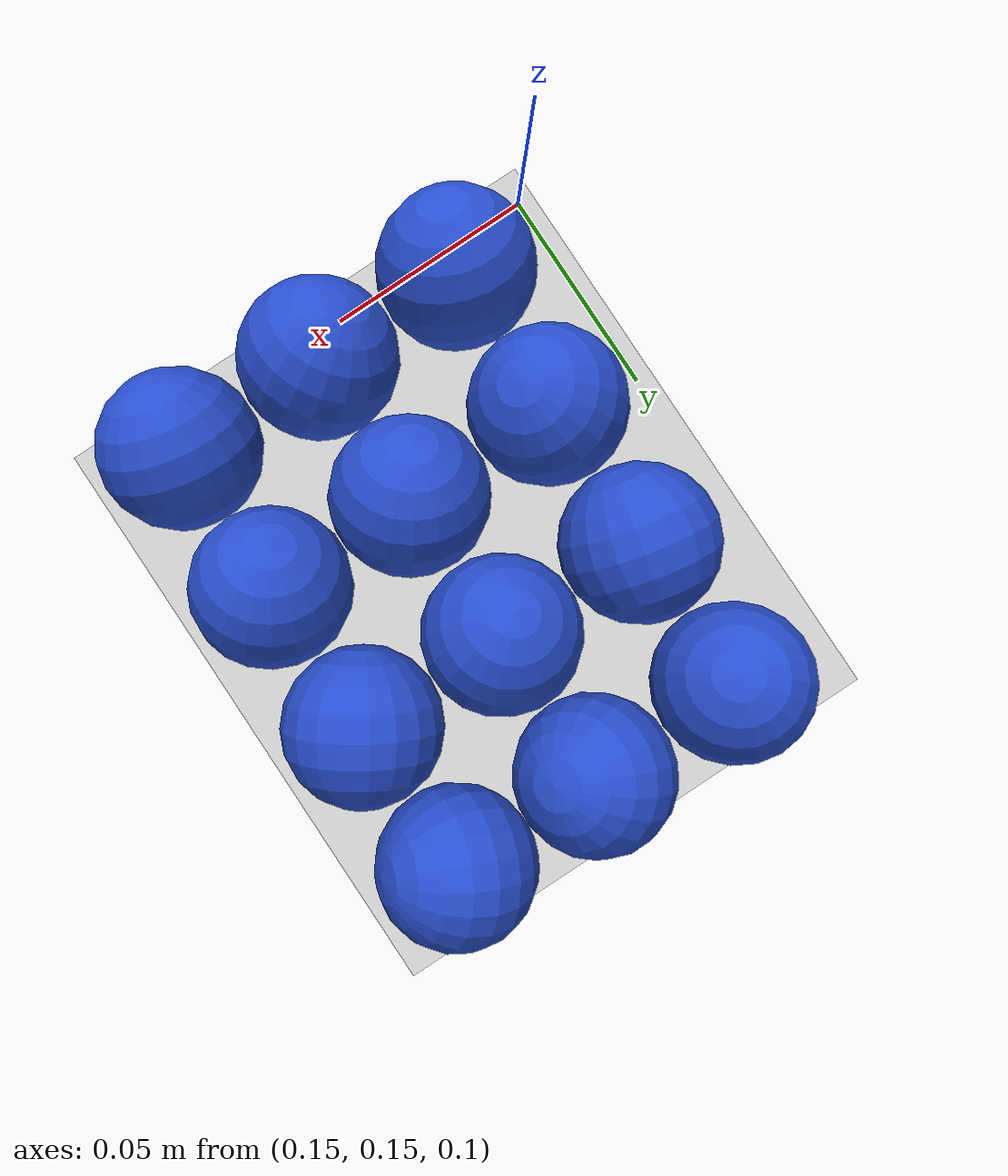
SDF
<sdf version="1.7">
 <world name="default">
  <light name="sun" type="directional">
   <pose>0 0 10 0 -0 0</pose>
   <diffuse>0.8 0.8 0.8 1</diffuse>
   <specular>0.2 0.2 0.2 1</specular>
   <attenuation>
    <range>1000</range>
    <constant>0.9</constant>
    <linear>0.01</linear>
    <quadratic>0.001</quadratic>
   </attenuation>
   <direction>-0.5 0.1 -0.9</direction>
   <spot><inner_angle>0</inner_angle><outer_angle>0</outer_angle><falloff>0</falloff></spot>
  </light>
  <model name="ground_plane">
   <static>1</static>
   <link name="link">
    <collision name="collision">
     <geometry><plane><normal>0 0 1</normal><size>100 100</size></plane></geometry>
     <surface>
      <contact><collide_bitmask>65535</collide_bitmask></contact>
      <friction><ode><mu>100</mu><mu2>50</mu2></ode></friction>
     </surface>
    </collision>
    <visual name="visual">
     <cast_shadows>0</cast_shadows>
     <geometry><plane><normal>0 0 1</normal><size>100 100</size></plane></geometry>
     <material>
      <script><uri>file://media/materials/scripts/gazebo.material</uri><name>Gazebo/Grey</name></script>
     </material>
    </visual>
   </link>
  </model>
  <gravity>0 0 -9.8</gravity>
  <magnetic_field>6e-06 2.3e-05 -4.2e-05</magnetic_field>
  <atmosphere type="adiabatic"/>
  <physics type="ode">
   <max_step_size>0.001</max_step_size>
   <real_time_factor>1</real_time_factor>
   <real_time_update_rate>1000</real_time_update_rate>
  </physics>
  <scene><ambient>0.4 0.4 0.4 1</ambient><background>0.7 0.7 0.7 1</background><shadows>1</shadows></scene>
  <spherical_coordinates>
   <surface_model>EARTH_WGS84</surface_model>
   <latitude_deg>0</latitude_deg>
   <longitude_deg>0</longitude_deg>
   <elevation>0</elevation>
   <heading_deg>0</heading_deg>
  </spherical_coordinates>
  <model name="marble_1_5cm">
   <link name="link">
    <pose>0 0 0.0075 0 -0 0</pose>
    <inertial>
     <mass>0.0062</mass>
     <inertia>
      <ixx>1.395e-07</ixx>
      <ixy>0</ixy>
      <ixz>0</ixz>
      <iyy>1.395e-07</iyy>
      <iyz>0</iyz>
      <izz>1.395e-07</izz>
     </inertia>
    </inertial>
    <collision name="collision">
     <geometry><sphere><radius>0.0175</radius></sphere></geometry>
     <surface>
      <contact>
       <poissons_ratio>0.22</poissons_ratio>
       <elastic_modulus>5.1e+10</elastic_modulus>
       <ode><kp>100000</kp><kd>100</kd><max_vel>100</max_vel><min_depth>0.001</min_depth></ode>
      </contact>
      <friction>
       <torsional>
        <coefficient>1</coefficient>
        <use_patch_radius>0</use_patch_radius>
        <surface_radius>0.01</surface_radius>
       </torsional>
      </friction>
     </surface>
    </collision>
    <visual name="visual">
     <geometry><sphere><radius>0.0175</radius></sphere></geometry>
     <material>
      <script><uri>file://media/materials/scripts/gazebo.material</uri><name>Gazebo/Blue</name></script>
     </material>
    </visual>
    <velocity_decay><linear>0</linear><angular>0.005</angular></velocity_decay>
   </link>
   <pose>0.211955 0.198445 0.113666 0.266479 -0.501159 0.343857</pose>
  </model>
  <model name="marble_1_5cm_clone">
   <link name="link">
    <pose>0 0 0.0075 0 -0 0</pose>
    <inertial>
     <mass>0.0062</mass>
     <inertia>
      <ixx>1.395e-07</ixx>
      <ixy>0</ixy>
      <ixz>0</ixz>
      <iyy>1.395e-07</iyy>
      <iyz>0</iyz>
      <izz>1.395e-07</izz>
     </inertia>
    </inertial>
    <collision name="collision">
     <geometry><sphere><radius>0.0175</radius></sphere></geometry>
     <surface>
      <contact>
       <poissons_ratio>0.22</poissons_ratio>
       <elastic_modulus>5.1e+10</elastic_modulus>
       <ode><kp>100000</kp><kd>100</kd><max_vel>100</max_vel><min_depth>0.001</min_depth></ode>
      </contact>
      <friction>
       <torsional>
        <coefficient>1</coefficient>
        <use_patch_radius>0</use_patch_radius>
        <surface_radius>0.01</surface_radius>
       </torsional>
      </friction>
     </surface>
    </collision>
    <visual name="visual">
     <geometry><sphere><radius>0.0175</radius></sphere></geometry>
     <material>
      <script><uri>file://media/materials/scripts/gazebo.material</uri><name>Gazebo/Blue</name></script>
     </material>
    </visual>
    <velocity_decay><linear>0</linear><angular>0.005</angular></velocity_decay>
   </link>
   <pose>0.175577 0.237973 0.118728 1.42434 -0.441231 -0.13584</pose>
  </model>
  <model name="marble_1_5cm_clone_0">
   <link name="link">
    <pose>0 0 0.0075 0 -0 0</pose>
    <inertial>
     <mass>0.0062</mass>
     <inertia>
      <ixx>1.395e-07</ixx>
      <ixy>0</ixy>
      <ixz>0</ixz>
      <iyy>1.395e-07</iyy>
      <iyz>0</iyz>
      <izz>1.395e-07</izz>
     </inertia>
    </inertial>
    <collision name="collision">
     <geometry><sphere><radius>0.0175</radius></sphere></geometry>
     <surface>
      <contact>
       <poissons_ratio>0.22</poissons_ratio>
       <elastic_modulus>5.1e+10</elastic_modulus>
       <ode><kp>100000</kp><kd>100</kd><max_vel>100</max_vel><min_depth>0.001</min_depth></ode>
      </contact>
      <friction>
       <torsional>
        <coefficient>1</coefficient>
        <use_patch_radius>0</use_patch_radius>
        <surface_radius>0.01</surface_radius>
       </torsional>
      </friction>
     </surface>
    </collision>
    <visual name="visual">
     <geometry><sphere><radius>0.0175</radius></sphere></geometry>
     <material>
      <script><uri>file://media/materials/scripts/gazebo.material</uri><name>Gazebo/Blue</name></script>
     </material>
    </visual>
    <velocity_decay><linear>0</linear><angular>0.005</angular></velocity_decay>
   </link>
   <pose>0.248651 0.236966 0.11931 1.49375 -0.483258 -0.551149</pose>
  </model>
  <model name="marble_1_5cm_clone_1">
   <link name="link">
    <pose>0 0 0.0075 0 -0 0</pose>
    <inertial>
     <mass>0.0062</mass>
     <inertia>
      <ixx>1.395e-07</ixx>
      <ixy>0</ixy>
      <ixz>0</ixz>
      <iyy>1.395e-07</iyy>
      <iyz>0</iyz>
      <izz>1.395e-07</izz>
     </inertia>
    </inertial>
    <collision name="collision">
     <geometry><sphere><radius>0.0175</radius></sphere></geometry>
     <surface>
      <contact>
       <poissons_ratio>0.22</poissons_ratio>
       <elastic_modulus>5.1e+10</elastic_modulus>
       <ode><kp>100000</kp><kd>100</kd><max_vel>100</max_vel><min_depth>0.001</min_depth></ode>
      </contact>
      <friction>
       <torsional>
        <coefficient>1</coefficient>
        <use_patch_radius>0</use_patch_radius>
        <surface_radius>0.01</surface_radius>
       </torsional>
      </friction>
     </surface>
    </collision>
    <visual name="visual">
     <geometry><sphere><radius>0.0175</radius></sphere></geometry>
     <material>
      <script><uri>file://media/materials/scripts/gazebo.material</uri><name>Gazebo/Blue</name></script>
     </material>
    </visual>
    <velocity_decay><linear>0</linear><angular>0.005</angular></velocity_decay>
   </link>
   <pose>0.173435 0.268212 0.111984 0.16023 0.209989 -0.630529</pose>
  </model>
  <model name="marble_1_5cm_clone_2">
   <link name="link">
    <pose>0 0 0.0075 0 -0 0</pose>
    <inertial>
     <mass>0.0062</mass>
     <inertia>
      <ixx>1.395e-07</ixx>
      <ixy>0</ixy>
      <ixz>0</ixz>
      <iyy>1.395e-07</iyy>
      <iyz>0</iyz>
      <izz>1.395e-07</izz>
     </inertia>
    </inertial>
    <collision name="collision">
     <geometry><sphere><radius>0.0175</radius></sphere></geometry>
     <surface>
      <contact>
       <poissons_ratio>0.22</poissons_ratio>
       <elastic_modulus>5.1e+10</elastic_modulus>
       <ode><kp>100000</kp><kd>100</kd><max_vel>100</max_vel><min_depth>0.001</min_depth></ode>
      </contact>
      <friction>
       <torsional>
        <coefficient>1</coefficient>
        <use_patch_radius>0</use_patch_radius>
        <surface_radius>0.01</surface_radius>
       </torsional>
      </friction>
     </surface>
    </collision>
    <visual name="visual">
     <geometry><sphere><radius>0.0175</radius></sphere></geometry>
     <material>
      <script><uri>file://media/materials/scripts/gazebo.material</uri><name>Gazebo/Blue</name></script>
     </material>
    </visual>
    <velocity_decay><linear>0</linear><angular>0.005</angular></velocity_decay>
   </link>
   <pose>0.245913 0.16596 0.115414 0.643582 -0.735951 0.493695</pose>
  </model>
  <model name="marble_1_5cm_clone_3">
   <link name="link">
    <pose>0 0 0.0075 0 -0 0</pose>
    <inertial>
     <mass>0.0062</mass>
     <inertia>
      <ixx>1.395e-07</ixx>
      <ixy>0</ixy>
      <ixz>0</ixz>
      <iyy>1.395e-07</iyy>
      <iyz>0</iyz>
      <izz>1.395e-07</izz>
     </inertia>
    </inertial>
    <collision name="collision">
     <geometry><sphere><radius>0.0175</radius></sphere></geometry>
     <surface>
      <contact>
       <poissons_ratio>0.22</poissons_ratio>
       <elastic_modulus>5.1e+10</elastic_modulus>
       <ode><kp>100000</kp><kd>100</kd><max_vel>100</max_vel><min_depth>0.001</min_depth></ode>
      </contact>
      <friction>
       <torsional>
        <coefficient>1</coefficient>
        <use_patch_radius>0</use_patch_radius>
        <surface_radius>0.01</surface_radius>
       </torsional>
      </friction>
     </surface>
    </collision>
    <visual name="visual">
     <geometry><sphere><radius>0.0175</radius></sphere></geometry>
     <material>
      <script><uri>file://media/materials/scripts/gazebo.material</uri><name>Gazebo/Blue</name></script>
     </material>
    </visual>
    <velocity_decay><linear>0</linear><angular>0.005</angular></velocity_decay>
   </link>
   <pose>0.205952 0.268651 0.11382 0.148516 0.579035 -0.352246</pose>
  </model>
  <model name="marble_1_5cm_clone_4">
   <link name="link">
    <pose>0 0 0.0075 0 -0 0</pose>
    <inertial>
     <mass>0.0062</mass>
     <inertia>
      <ixx>1.395e-07</ixx>
      <ixy>0</ixy>
      <ixz>0</ixz>
      <iyy>1.395e-07</iyy>
      <iyz>0</iyz>
      <izz>1.395e-07</izz>
     </inertia>
    </inertial>
    <collision name="collision">
     <geometry><sphere><radius>0.0175</radius></sphere></geometry>
     <surface>
      <contact>
       <poissons_ratio>0.22</poissons_ratio>
       <elastic_modulus>5.1e+10</elastic_modulus>
       <ode><kp>100000</kp><kd>100</kd><max_vel>100</max_vel><min_depth>0.001</min_depth></ode>
      </contact>
      <friction>
       <torsional>
        <coefficient>1</coefficient>
        <use_patch_radius>0</use_patch_radius>
        <surface_radius>0.01</surface_radius>
       </torsional>
      </friction>
     </surface>
    </collision>
    <visual name="visual">
     <geometry><sphere><radius>0.0175</radius></sphere></geometry>
     <material>
      <script><uri>file://media/materials/scripts/gazebo.material</uri><name>Gazebo/Blue</name></script>
     </material>
    </visual>
    <velocity_decay><linear>0</linear><angular>0.005</angular></velocity_decay>
   </link>
   <pose>0.211311 0.232214 0.112902 0.047282 -0.32438 0.482418</pose>
  </model>
  <model name="marble_1_5cm_clone_5">
   <link name="link">
    <pose>0 0 0.0075 0 -0 0</pose>
    <inertial>
     <mass>0.0062</mass>
     <inertia>
      <ixx>1.395e-07</ixx>
      <ixy>0</ixy>
      <ixz>0</ixz>
      <iyy>1.395e-07</iyy>
      <iyz>0</iyz>
      <izz>1.395e-07</izz>
     </inertia>
    </inertial>
    <collision name="collision">
     <geometry><sphere><radius>0.0175</radius></sphere></geometry>
     <surface>
      <contact>
       <poissons_ratio>0.22</poissons_ratio>
       <elastic_modulus>5.1e+10</elastic_modulus>
       <ode><kp>100000</kp><kd>100</kd><max_vel>100</max_vel><min_depth>0.001</min_depth></ode>
      </contact>
      <friction>
       <torsional>
        <coefficient>1</coefficient>
        <use_patch_radius>0</use_patch_radius>
        <surface_radius>0.01</surface_radius>
       </torsional>
      </friction>
     </surface>
    </collision>
    <visual name="visual">
     <geometry><sphere><radius>0.0175</radius></sphere></geometry>
     <material>
      <script><uri>file://media/materials/scripts/gazebo.material</uri><name>Gazebo/Blue</name></script>
     </material>
    </visual>
    <velocity_decay><linear>0</linear><angular>0.005</angular></velocity_decay>
   </link>
   <pose>0.24991 0.262879 0.122862 -2.10826 0.29766 0.84051</pose>
  </model>
  <model name="marble_1_5cm_clone_6">
   <link name="link">
    <pose>0 0 0.0075 0 -0 0</pose>
    <inertial>
     <mass>0.0062</mass>
     <inertia>
      <ixx>1.395e-07</ixx>
      <ixy>0</ixy>
      <ixz>0</ixz>
      <iyy>1.395e-07</iyy>
      <iyz>0</iyz>
      <izz>1.395e-07</izz>
     </inertia>
    </inertial>
    <collision name="collision">
     <geometry><sphere><radius>0.0175</radius></sphere></geometry>
     <surface>
      <contact>
       <poissons_ratio>0.22</poissons_ratio>
       <elastic_modulus>5.1e+10</elastic_modulus>
       <ode><kp>100000</kp><kd>100</kd><max_vel>100</max_vel><min_depth>0.001</min_depth></ode>
      </contact>
      <friction>
       <torsional>
        <coefficient>1</coefficient>
        <use_patch_radius>0</use_patch_radius>
        <surface_radius>0.01</surface_radius>
       </torsional>
      </friction>
     </surface>
    </collision>
    <visual name="visual">
     <geometry><sphere><radius>0.0175</radius></sphere></geometry>
     <material>
      <script><uri>file://media/materials/scripts/gazebo.material</uri><name>Gazebo/Blue</name></script>
     </material>
    </visual>
    <velocity_decay><linear>0</linear><angular>0.005</angular></velocity_decay>
   </link>
   <pose>0.17212 0.197732 0.112962 0.38695 0.162134 0.337932</pose>
  </model>
  <model name="marble_1_5cm_clone_7">
   <link name="link">
    <pose>0 0 0.0075 0 -0 0</pose>
    <inertial>
     <mass>0.0062</mass>
     <inertia>
      <ixx>1.395e-07</ixx>
      <ixy>0</ixy>
      <ixz>0</ixz>
      <iyy>1.395e-07</iyy>
      <iyz>0</iyz>
      <izz>1.395e-07</izz>
     </inertia>
    </inertial>
    <collision name="collision">
     <geometry><sphere><radius>0.0175</radius></sphere></geometry>
     <surface>
      <contact>
       <poissons_ratio>0.22</poissons_ratio>
       <elastic_modulus>5.1e+10</elastic_modulus>
       <ode><kp>100000</kp><kd>100</kd><max_vel>100</max_vel><min_depth>0.001</min_depth></ode>
      </contact>
      <friction>
       <torsional>
        <coefficient>1</coefficient>
        <use_patch_radius>0</use_patch_radius>
        <surface_radius>0.01</surface_radius>
       </torsional>
      </friction>
     </surface>
    </collision>
    <visual name="visual">
     <geometry><sphere><radius>0.0175</radius></sphere></geometry>
     <material>
      <script><uri>file://media/materials/scripts/gazebo.material</uri><name>Gazebo/Blue</name></script>
     </material>
    </visual>
    <velocity_decay><linear>0</linear><angular>0.005</angular></velocity_decay>
   </link>
   <pose>0.247354 0.197832 0.113343 0.30928 -0.425643 0.04279</pose>
  </model>
  <model name="marble_1_5cm_clone_8">
   <link name="link">
    <pose>0 0 0.0075 0 -0 0</pose>
    <inertial>
     <mass>0.0062</mass>
     <inertia>
      <ixx>1.395e-07</ixx>
      <ixy>0</ixy>
      <ixz>0</ixz>
      <iyy>1.395e-07</iyy>
      <iyz>0</iyz>
      <izz>1.395e-07</izz>
     </inertia>
    </inertial>
    <collision name="collision">
     <geometry><sphere><radius>0.0175</radius></sphere></geometry>
     <surface>
      <contact>
       <poissons_ratio>0.22</poissons_ratio>
       <elastic_modulus>5.1e+10</elastic_modulus>
       <ode><kp>100000</kp><kd>100</kd><max_vel>100</max_vel><min_depth>0.001</min_depth></ode>
      </contact>
      <friction>
       <torsional>
        <coefficient>1</coefficient>
        <use_patch_radius>0</use_patch_radius>
        <surface_radius>0.01</surface_radius>
       </torsional>
      </friction>
     </surface>
    </collision>
    <visual name="visual">
     <geometry><sphere><radius>0.0175</radius></sphere></geometry>
     <material>
      <script><uri>file://media/materials/scripts/gazebo.material</uri><name>Gazebo/Blue</name></script>
     </material>
    </visual>
    <velocity_decay><linear>0</linear><angular>0.005</angular></velocity_decay>
   </link>
   <pose>0.213994 0.161405 0.114254 0.031132 -0.700228 0.220327</pose>
  </model>
  <model name="marble_1_5cm_clone_9">
   <link name="link">
    <pose>0 0 0.0075 0 -0 0</pose>
    <inertial>
     <mass>0.0062</mass>
     <inertia>
      <ixx>1.395e-07</ixx>
      <ixy>0</ixy>
      <ixz>0</ixz>
      <iyy>1.395e-07</iyy>
      <iyz>0</iyz>
      <izz>1.395e-07</izz>
     </inertia>
    </inertial>
    <collision name="collision">
     <geometry><sphere><radius>0.0175</radius></sphere></geometry>
     <surface>
      <contact>
       <poissons_ratio>0.22</poissons_ratio>
       <elastic_modulus>5.1e+10</elastic_modulus>
       <ode><kp>100000</kp><kd>100</kd><max_vel>100</max_vel><min_depth>0.001</min_depth></ode>
      </contact>
      <friction>
       <torsional>
        <coefficient>1</coefficient>
        <use_patch_radius>0</use_patch_radius>
        <surface_radius>0.01</surface_radius>
       </torsional>
      </friction>
     </surface>
    </collision>
    <visual name="visual">
     <geometry><sphere><radius>0.0175</radius></sphere></geometry>
     <material>
      <script><uri>file://media/materials/scripts/gazebo.material</uri><name>Gazebo/Blue</name></script>
     </material>
    </visual>
    <velocity_decay><linear>0</linear><angular>0.005</angular></velocity_decay>
   </link>
   <pose>0.1751 0.163924 0.113393 0.492653 -0.269693 0.202175</pose>
  </model>
 </world>
</sdf>
